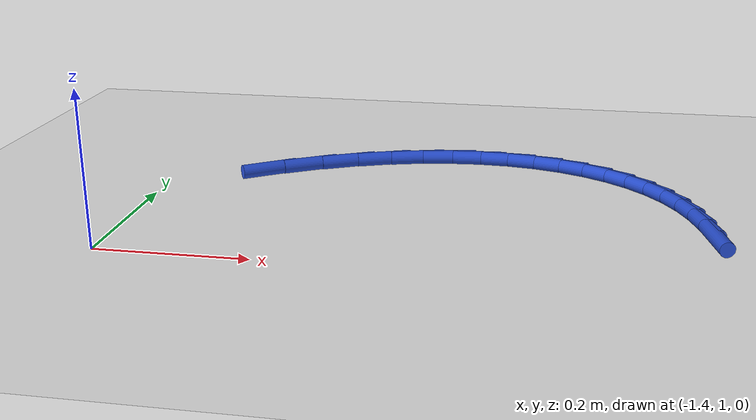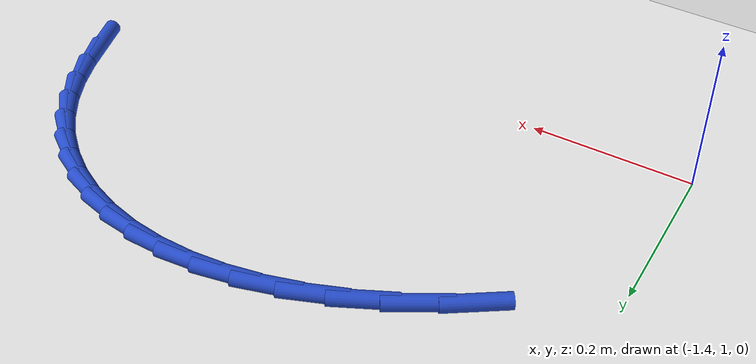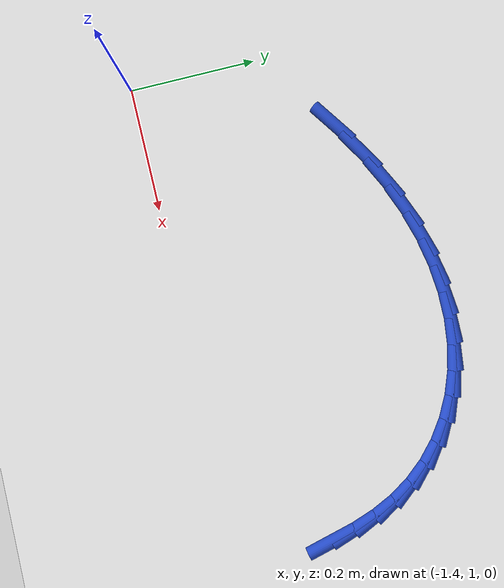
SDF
<sdf version="1.6">
 <world name="default">
  <model name="ground_plane">
   <static>1</static>
   <link name="link">
    <collision name="collision">
     <geometry><plane><normal>0 0 1</normal><size>100 100</size></plane></geometry>
     <surface><friction><ode><mu>100</mu><mu2>50</mu2></ode></friction></surface>
    </collision>
    <visual name="visual">
     <cast_shadows>0</cast_shadows>
     <geometry><plane><normal>0 0 1</normal><size>100 100</size></plane></geometry>
     <material>
      <script><uri>file://media/materials/scripts/gazebo.material</uri><name>Gazebo/WhiteGlow</name></script>
     </material>
    </visual>
   </link>
  </model>
  <model name="line">
   <link name="link_36">
    <pose>-0.651603979641518 1.1363973396835902 0.01 0 1.57 -1.3389130899435444</pose>
    <collision name="collision">
     <geometry><cylinder><radius>0.01</radius><length>0.08</length></cylinder></geometry>
    </collision>
    <visual name="visual">
     <material>
      <script><name>Gazebo/Blue</name><uri>file://media/materials/scripts/gazebo.material</uri></script>
     </material>
     <geometry><cylinder><radius>0.01</radius><length>0.08</length></cylinder></geometry>
    </visual>
   </link>
   <link name="link_37">
    <pose>-0.6602381694266866 1.1729626357341183 0.01 0 1.57 -1.2584576142352395</pose>
    <collision name="collision">
     <geometry><cylinder><radius>0.01</radius><length>0.08</length></cylinder></geometry>
    </collision>
    <visual name="visual">
     <material>
      <script><name>Gazebo/Blue</name><uri>file://media/materials/scripts/gazebo.material</uri></script>
     </material>
     <geometry><cylinder><radius>0.01</radius><length>0.08</length></cylinder></geometry>
    </visual>
   </link>
   <link name="link_38">
    <pose>-0.6714690499140199 1.2077430560312115 0.01 0 1.57 -1.1547935067653148</pose>
    <collision name="collision">
     <geometry><cylinder><radius>0.01</radius><length>0.08</length></cylinder></geometry>
    </collision>
    <visual name="visual">
     <material>
      <script><name>Gazebo/Blue</name><uri>file://media/materials/scripts/gazebo.material</uri></script>
     </material>
     <geometry><cylinder><radius>0.01</radius><length>0.08</length></cylinder></geometry>
    </visual>
   </link>
   <link name="link_39">
    <pose>-0.6859033531349044 1.2404156149457408 0.01 0 1.57 -1.0295935186578848</pose>
    <collision name="collision">
     <geometry><cylinder><radius>0.01</radius><length>0.08</length></cylinder></geometry>
    </collision>
    <visual name="visual">
     <material>
      <script><name>Gazebo/Blue</name><uri>file://media/materials/scripts/gazebo.material</uri></script>
     </material>
     <geometry><cylinder><radius>0.01</radius><length>0.08</length></cylinder></geometry>
    </visual>
   </link>
   <link name="link_40">
    <pose>-0.7040839907762055 1.270662948343458 0.01 0 1.57 -0.8976465154691868</pose>
    <collision name="collision">
     <geometry><cylinder><radius>0.01</radius><length>0.08</length></cylinder></geometry>
    </collision>
    <visual name="visual">
     <material>
      <script><name>Gazebo/Blue</name><uri>file://media/materials/scripts/gazebo.material</uri></script>
     </material>
     <geometry><cylinder><radius>0.01</radius><length>0.08</length></cylinder></geometry>
    </visual>
   </link>
   <link name="link_41">
    <pose>-0.7260513970527477 1.298211951872143 0.01 0 1.57 -0.7662951952139173</pose>
    <collision name="collision">
     <geometry><cylinder><radius>0.01</radius><length>0.08</length></cylinder></geometry>
    </collision>
    <visual name="visual">
     <material>
      <script><name>Gazebo/Blue</name><uri>file://media/materials/scripts/gazebo.material</uri></script>
     </material>
     <geometry><cylinder><radius>0.01</radius><length>0.08</length></cylinder></geometry>
    </visual>
   </link>
   <link name="link_42">
    <pose>-0.7516081487189571 1.3228104724061214 0.01 0 1.57 -0.6365130016986633</pose>
    <collision name="collision">
     <geometry><cylinder><radius>0.01</radius><length>0.08</length></cylinder></geometry>
    </collision>
    <visual name="visual">
     <material>
      <script><name>Gazebo/Blue</name><uri>file://media/materials/scripts/gazebo.material</uri></script>
     </material>
     <geometry><cylinder><radius>0.01</radius><length>0.08</length></cylinder></geometry>
    </visual>
   </link>
   <link name="link_43">
    <pose>-0.7805554012860256 1.3442064820072537 0.01 0 1.57 -0.5091533271862781</pose>
    <collision name="collision">
     <geometry><cylinder><radius>0.01</radius><length>0.08</length></cylinder></geometry>
    </collision>
    <visual name="visual">
     <material>
      <script><name>Gazebo/Blue</name><uri>file://media/materials/scripts/gazebo.material</uri></script>
     </material>
     <geometry><cylinder><radius>0.01</radius><length>0.08</length></cylinder></geometry>
    </visual>
   </link>
   <link name="link_44">
    <pose>-0.8126943102651452 1.3621479527373985 0.01 0 1.57 -0.3849696056270498</pose>
    <collision name="collision">
     <geometry><cylinder><radius>0.01</radius><length>0.08</length></cylinder></geometry>
    </collision>
    <visual name="visual">
     <material>
      <script><name>Gazebo/Blue</name><uri>file://media/materials/scripts/gazebo.material</uri></script>
     </material>
     <geometry><cylinder><radius>0.01</radius><length>0.08</length></cylinder></geometry>
    </visual>
   </link>
   <link name="link_45">
    <pose>-0.8478260311675074 1.3763828566584162 0.01 0 1.57 -0.26460552125198344</pose>
    <collision name="collision">
     <geometry><cylinder><radius>0.01</radius><length>0.08</length></cylinder></geometry>
    </collision>
    <visual name="visual">
     <material>
      <script><name>Gazebo/Blue</name><uri>file://media/materials/scripts/gazebo.material</uri></script>
     </material>
     <geometry><cylinder><radius>0.01</radius><length>0.08</length></cylinder></geometry>
    </visual>
   </link>
   <link name="link_46">
    <pose>-0.8857517195043048 1.3866591658321665 0.01 0 1.57 -0.14858980268371746</pose>
    <collision name="collision">
     <geometry><cylinder><radius>0.01</radius><length>0.08</length></cylinder></geometry>
    </collision>
    <visual name="visual">
     <material>
      <script><name>Gazebo/Blue</name><uri>file://media/materials/scripts/gazebo.material</uri></script>
     </material>
     <geometry><cylinder><radius>0.01</radius><length>0.08</length></cylinder></geometry>
    </visual>
   </link>
   <link name="link_47">
    <pose>-0.9262725307867288 1.3927248523205087 0.01 0 1.57 -0.037334567592451025</pose>
    <collision name="collision">
     <geometry><cylinder><radius>0.01</radius><length>0.08</length></cylinder></geometry>
    </collision>
    <visual name="visual">
     <material>
      <script><name>Gazebo/Blue</name><uri>file://media/materials/scripts/gazebo.material</uri></script>
     </material>
     <geometry><cylinder><radius>0.01</radius><length>0.08</length></cylinder></geometry>
    </visual>
   </link>
   <link name="link_48">
    <pose>-0.9691896205259716 1.3943278881853034 0.01 0 1.57 0.06886302448914783</pose>
    <collision name="collision">
     <geometry><cylinder><radius>0.01</radius><length>0.08</length></cylinder></geometry>
    </collision>
    <visual name="visual">
     <material>
      <script><name>Gazebo/Blue</name><uri>file://media/materials/scripts/gazebo.material</uri></script>
     </material>
     <geometry><cylinder><radius>0.01</radius><length>0.08</length></cylinder></geometry>
    </visual>
   </link>
   <link name="link_49">
    <pose>-1.0143041442332248 1.39121624548841 0.01 0 1.57 0.16981570867951956</pose>
    <collision name="collision">
     <geometry><cylinder><radius>0.01</radius><length>0.08</length></cylinder></geometry>
    </collision>
    <visual name="visual">
     <material>
      <script><name>Gazebo/Blue</name><uri>file://media/materials/scripts/gazebo.material</uri></script>
     </material>
     <geometry><cylinder><radius>0.01</radius><length>0.08</length></cylinder></geometry>
    </visual>
   </link>
   <link name="link_50">
    <pose>-1.061417257419681 1.3831378962916885 0.01 0 1.57 0.26543767326882634</pose>
    <collision name="collision">
     <geometry><cylinder><radius>0.01</radius><length>0.08</length></cylinder></geometry>
    </collision>
    <visual name="visual">
     <material>
      <script><name>Gazebo/Blue</name><uri>file://media/materials/scripts/gazebo.material</uri></script>
     </material>
     <geometry><cylinder><radius>0.01</radius><length>0.08</length></cylinder></geometry>
    </visual>
   </link>
   <link name="link_51">
    <pose>-1.1103301155965313 1.3698408126569976 0.01 0 1.57 0.35573317610183175</pose>
    <collision name="collision">
     <geometry><cylinder><radius>0.01</radius><length>0.08</length></cylinder></geometry>
    </collision>
    <visual name="visual">
     <material>
      <script><name>Gazebo/Blue</name><uri>file://media/materials/scripts/gazebo.material</uri></script>
     </material>
     <geometry><cylinder><radius>0.01</radius><length>0.08</length></cylinder></geometry>
    </visual>
   </link>
   <link name="link_52">
    <pose>-1.1608438742749685 1.351072966646199 0.01 0 1.57 0.44078306069799317</pose>
    <collision name="collision">
     <geometry><cylinder><radius>0.01</radius><length>0.08</length></cylinder></geometry>
    </collision>
    <visual name="visual">
     <material>
      <script><name>Gazebo/Blue</name><uri>file://media/materials/scripts/gazebo.material</uri></script>
     </material>
     <geometry><cylinder><radius>0.01</radius><length>0.08</length></cylinder></geometry>
    </visual>
   </link>
   <link name="link_53">
    <pose>-1.212759688966184 1.3265823303211506 0.01 0 1.57 0.5195562922121968</pose>
    <collision name="collision">
     <geometry><cylinder><radius>0.01</radius><length>0.08</length></cylinder></geometry>
    </collision>
    <visual name="visual">
     <material>
      <script><name>Gazebo/Blue</name><uri>file://media/materials/scripts/gazebo.material</uri></script>
     </material>
     <geometry><cylinder><radius>0.01</radius><length>0.08</length></cylinder></geometry>
    </visual>
   </link>
   <link name="link_54">
    <pose>-1.2657705799792216 1.296261541887324 0.01 0 1.57 0.5830604110647526</pose>
    <collision name="collision">
     <geometry><cylinder><radius>0.01</radius><length>0.08</length></cylinder></geometry>
    </collision>
    <visual name="visual">
     <material>
      <script><name>Gazebo/Blue</name><uri>file://media/materials/scripts/gazebo.material</uri></script>
     </material>
     <geometry><cylinder><radius>0.01</radius><length>0.08</length></cylinder></geometry>
    </visual>
   </link>
  </model>
 </world>
</sdf>
